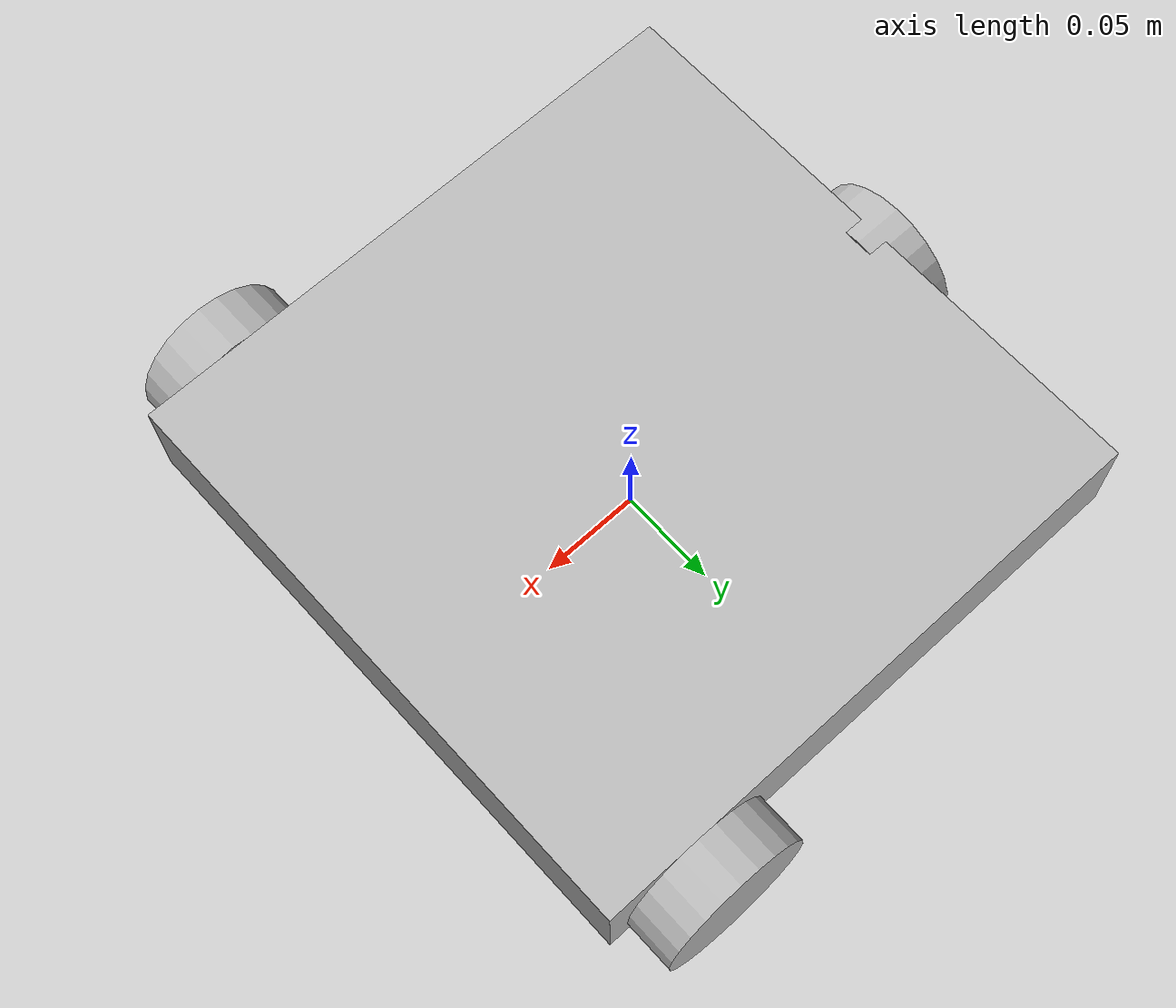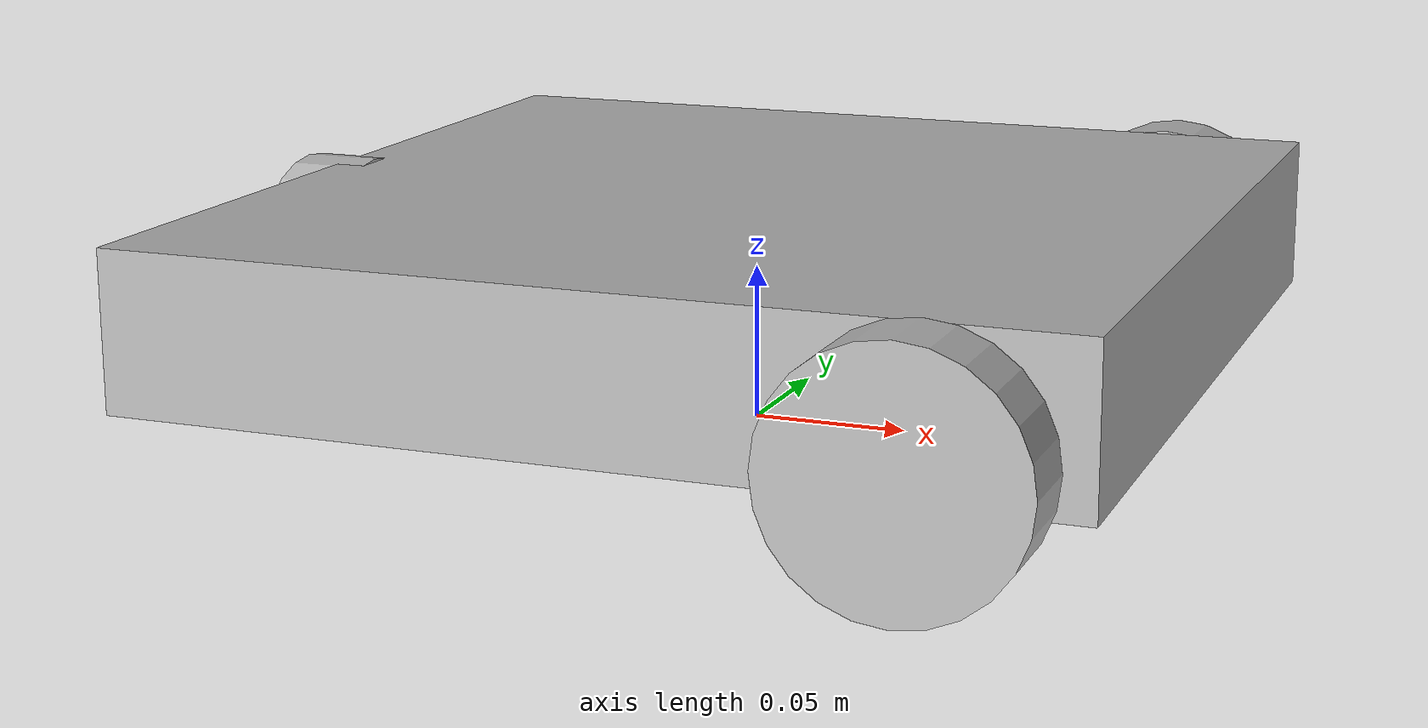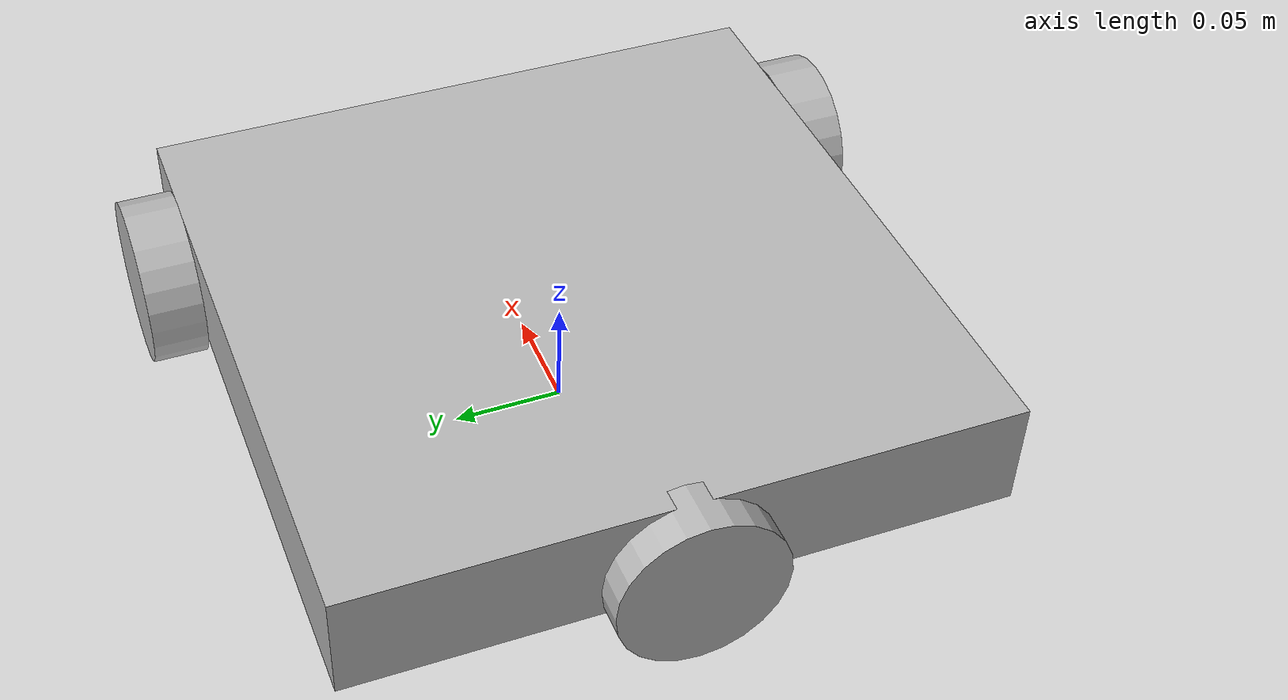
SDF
<?xml version='1.0'?>
<sdf version='1.4'>
    <model name="autonet_v1">
        <static>true</static>
        <link name='chassis'>
            <pose>0 0 .05 0 0 0</pose>

            <collision name='collision'>
                <geometry>
                    <box>
                        <size>.295 .295 .05</size>
                    </box>
                </geometry>
            </collision>

            <visual name='visual'>
                <geometry>
                    <box>
                        <size>.295 .295 .05</size>
                    </box>
                </geometry>
            </visual>
            <collision name='caster_collision'>
                <pose>-0.15 0 -0.012 0 1.5707 0</pose>
                <geometry>
                    <cylinder>
                        <radius>.038</radius>
                        <length>.025</length>
                    </cylinder>
                </geometry>
                <surface>
                    <friction>
                        <ode>
                            <mu>0</mu>
                            <mu2>0</mu2>
                            <slip1>1.0</slip1>
                            <slip2>1.0</slip2>
                        </ode>
                    </friction>
                </surface>
            </collision>

            <visual name='caster_visual'>
                <pose>-0.15 0 -0.012 0 1.5707 0</pose>
                <geometry>
                    <cylinder>
                        <radius>.038</radius>
                        <length>.025</length>
                    </cylinder>
                </geometry>
            </visual>
        </link>
        <link name="left_wheel">
            <pose>0.1 0.16 0.038 0 1.5707 1.5707</pose>
            <collision name="collision">
                <geometry>
                    <cylinder>
                        <radius>.038</radius>
                        <length>.025</length>
                    </cylinder>
                </geometry>
            </collision>
            <visual name="visual">
                <geometry>
                    <cylinder>
                        <radius>.038</radius>
                        <length>.025</length>
                    </cylinder>
                </geometry>
            </visual>
        </link>
        <link name="right_wheel">
            <pose>0.1 -0.16 0.038 0 1.5707 1.5707</pose>
            <collision name="collision">
                <geometry>
                    <cylinder>
                        <radius>.038</radius>
                        <length>.025</length>
                    </cylinder>
                </geometry>
            </collision>
            <visual name="visual">
                <geometry>
                    <cylinder>
                        <radius>.038</radius>
                        <length>.025</length>
                    </cylinder>
                </geometry>
            </visual>
        </link>
        <joint type="revolute" name="left_wheel_hinge">
            <pose>0 0 -0.03 0 0 0</pose>
            <child>left_wheel</child>
            <parent>chassis</parent>
            <axis>
                <xyz>0 1 0</xyz>
            </axis>
        </joint>

        <joint type="revolute" name="right_wheel_hinge">
            <pose>0 0 0.03 0 0 0</pose>
            <child>right_wheel</child>
            <parent>chassis</parent>
            <axis>
                <xyz>0 1 0</xyz>
            </axis>
        </joint>
    </model>
</sdf>
